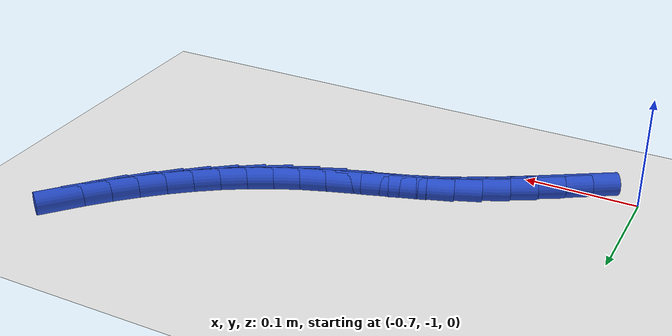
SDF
<sdf version="1.6">
 <world name="default">
  <model name="ground_plane">
   <static>1</static>
   <link name="link">
    <collision name="collision">
     <geometry><plane><normal>0 0 1</normal><size>100 100</size></plane></geometry>
     <surface><friction><ode><mu>100</mu><mu2>50</mu2></ode></friction></surface>
    </collision>
    <visual name="visual">
     <cast_shadows>0</cast_shadows>
     <geometry><plane><normal>0 0 1</normal><size>100 100</size></plane></geometry>
     <material>
      <script><uri>file://media/materials/scripts/gazebo.material</uri><name>Gazebo/WhiteGlow</name></script>
     </material>
    </visual>
   </link>
  </model>
  <model name="line">
   <link name="link_236">
    <pose>-0.6435267009509397 -0.9913873038698582 0.01 0 1.57 0.560354332982308</pose>
    <collision name="collision">
     <geometry><cylinder><radius>0.01</radius><length>0.08</length></cylinder></geometry>
    </collision>
    <visual name="visual">
     <material>
      <script><name>Gazebo/Blue</name><uri>file://media/materials/scripts/gazebo.material</uri></script>
     </material>
     <geometry><cylinder><radius>0.01</radius><length>0.08</length></cylinder></geometry>
    </visual>
   </link>
   <link name="link_237">
    <pose>-0.6234252648021739 -0.9787747933649472 0.01 0 1.57 0.5516567698110394</pose>
    <collision name="collision">
     <geometry><cylinder><radius>0.01</radius><length>0.08</length></cylinder></geometry>
    </collision>
    <visual name="visual">
     <material>
      <script><name>Gazebo/Blue</name><uri>file://media/materials/scripts/gazebo.material</uri></script>
     </material>
     <geometry><cylinder><radius>0.01</radius><length>0.08</length></cylinder></geometry>
    </visual>
   </link>
   <link name="link_238">
    <pose>-0.6031911481786946 -0.9663229794295489 0.01 0 1.57 0.5280816869629761</pose>
    <collision name="collision">
     <geometry><cylinder><radius>0.01</radius><length>0.08</length></cylinder></geometry>
    </collision>
    <visual name="visual">
     <material>
      <script><name>Gazebo/Blue</name><uri>file://media/materials/scripts/gazebo.material</uri></script>
     </material>
     <geometry><cylinder><radius>0.01</radius><length>0.08</length></cylinder></geometry>
    </visual>
   </link>
   <link name="link_239">
    <pose>-0.5827115590456124 -0.9543763537486109 0.01 0 1.57 0.4893377987275829</pose>
    <collision name="collision">
     <geometry><cylinder><radius>0.01</radius><length>0.08</length></cylinder></geometry>
    </collision>
    <visual name="visual">
     <material>
      <script><name>Gazebo/Blue</name><uri>file://media/materials/scripts/gazebo.material</uri></script>
     </material>
     <geometry><cylinder><radius>0.01</radius><length>0.08</length></cylinder></geometry>
    </visual>
   </link>
   <link name="link_240">
    <pose>-0.5618737053680376 -0.9432794080070803 0.01 0 1.57 0.4350312116175732</pose>
    <collision name="collision">
     <geometry><cylinder><radius>0.01</radius><length>0.08</length></cylinder></geometry>
    </collision>
    <visual name="visual">
     <material>
      <script><name>Gazebo/Blue</name><uri>file://media/materials/scripts/gazebo.material</uri></script>
     </material>
     <geometry><cylinder><radius>0.01</radius><length>0.08</length></cylinder></geometry>
    </visual>
   </link>
   <link name="link_241">
    <pose>-0.5405647953348198 -0.9333766332904466 0.01 0 1.57 0.37221075639807266</pose>
    <collision name="collision">
     <geometry><cylinder><radius>0.01</radius><length>0.08</length></cylinder></geometry>
    </collision>
    <visual name="visual">
     <material>
      <script><name>Gazebo/Blue</name><uri>file://media/materials/scripts/gazebo.material</uri></script>
     </material>
     <geometry><cylinder><radius>0.01</radius><length>0.08</length></cylinder></geometry>
    </visual>
   </link>
   <link name="link_242">
    <pose>-0.5187316558593887 -0.9248527859897239 0.01 0 1.57 0.3288415033547963</pose>
    <collision name="collision">
     <geometry><cylinder><radius>0.01</radius><length>0.08</length></cylinder></geometry>
    </collision>
    <visual name="visual">
     <material>
      <script><name>Gazebo/Blue</name><uri>file://media/materials/scripts/gazebo.material</uri></script>
     </material>
     <geometry><cylinder><radius>0.01</radius><length>0.08</length></cylinder></geometry>
    </visual>
   </link>
   <link name="link_243">
    <pose>-0.4965485619706308 -0.9172832274528813 0.01 0 1.57 0.3116439595789328</pose>
    <collision name="collision">
     <geometry><cylinder><radius>0.01</radius><length>0.08</length></cylinder></geometry>
    </collision>
    <visual name="visual">
     <material>
      <script><name>Gazebo/Blue</name><uri>file://media/materials/scripts/gazebo.material</uri></script>
     </material>
     <geometry><cylinder><radius>0.01</radius><length>0.08</length></cylinder></geometry>
    </visual>
   </link>
   <link name="link_244">
    <pose>-0.4742440203651094 -0.9100980177164573 0.01 0 1.57 0.3206002548735772</pose>
    <collision name="collision">
     <geometry><cylinder><radius>0.01</radius><length>0.08</length></cylinder></geometry>
    </collision>
    <visual name="visual">
     <material>
      <script><name>Gazebo/Blue</name><uri>file://media/materials/scripts/gazebo.material</uri></script>
     </material>
     <geometry><cylinder><radius>0.01</radius><length>0.08</length></cylinder></geometry>
    </visual>
   </link>
   <link name="link_245">
    <pose>-0.45204653773938813 -0.9027272168169894 0.01 0 1.57 0.3558847338889295</pose>
    <collision name="collision">
     <geometry><cylinder><radius>0.01</radius><length>0.08</length></cylinder></geometry>
    </collision>
    <visual name="visual">
     <material>
      <script><name>Gazebo/Blue</name><uri>file://media/materials/scripts/gazebo.material</uri></script>
     </material>
     <geometry><cylinder><radius>0.01</radius><length>0.08</length></cylinder></geometry>
    </visual>
   </link>
   <link name="link_246">
    <pose>-0.4301846207900308 -0.8946008847910162 0.01 0 1.57 0.41639098079147097</pose>
    <collision name="collision">
     <geometry><cylinder><radius>0.01</radius><length>0.08</length></cylinder></geometry>
    </collision>
    <visual name="visual">
     <material>
      <script><name>Gazebo/Blue</name><uri>file://media/materials/scripts/gazebo.material</uri></script>
     </material>
     <geometry><cylinder><radius>0.01</radius><length>0.08</length></cylinder></geometry>
    </visual>
   </link>
   <link name="link_247">
    <pose>-0.40887773422939544 -0.8851778984913087 0.01 0 1.57 0.4850293351724226</pose>
    <collision name="collision">
     <geometry><cylinder><radius>0.01</radius><length>0.08</length></cylinder></geometry>
    </collision>
    <visual name="visual">
     <material>
      <script><name>Gazebo/Blue</name><uri>file://media/materials/scripts/gazebo.material</uri></script>
     </material>
     <geometry><cylinder><radius>0.01</radius><length>0.08</length></cylinder></geometry>
    </visual>
   </link>
   <link name="link_248">
    <pose>-0.38822693209038717 -0.8742945097706643 0.01 0 1.57 0.5497953882217654</pose>
    <collision name="collision">
     <geometry><cylinder><radius>0.01</radius><length>0.08</length></cylinder></geometry>
    </collision>
    <visual name="visual">
     <material>
      <script><name>Gazebo/Blue</name><uri>file://media/materials/scripts/gazebo.material</uri></script>
     </material>
     <geometry><cylinder><radius>0.01</radius><length>0.08</length></cylinder></geometry>
    </visual>
   </link>
   <link name="link_249">
    <pose>-0.3682500460935769 -0.8620522001069737 0.01 0 1.57 0.6104973953502563</pose>
    <collision name="collision">
     <geometry><cylinder><radius>0.01</radius><length>0.08</length></cylinder></geometry>
    </collision>
    <visual name="visual">
     <material>
      <script><name>Gazebo/Blue</name><uri>file://media/materials/scripts/gazebo.material</uri></script>
     </material>
     <geometry><cylinder><radius>0.01</radius><length>0.08</length></cylinder></geometry>
    </visual>
   </link>
   <link name="link_250">
    <pose>-0.348963179153491 -0.848557960685404 0.01 0 1.57 0.6672995989669072</pose>
    <collision name="collision">
     <geometry><cylinder><radius>0.01</radius><length>0.08</length></cylinder></geometry>
    </collision>
    <visual name="visual">
     <material>
      <script><name>Gazebo/Blue</name><uri>file://media/materials/scripts/gazebo.material</uri></script>
     </material>
     <geometry><cylinder><radius>0.01</radius><length>0.08</length></cylinder></geometry>
    </visual>
   </link>
   <link name="link_251">
    <pose>-0.3303824341846545 -0.8339187826911222 0.01 0 1.57 0.7204426249471751</pose>
    <collision name="collision">
     <geometry><cylinder><radius>0.01</radius><length>0.08</length></cylinder></geometry>
    </collision>
    <visual name="visual">
     <material>
      <script><name>Gazebo/Blue</name><uri>file://media/materials/scripts/gazebo.material</uri></script>
     </material>
     <geometry><cylinder><radius>0.01</radius><length>0.08</length></cylinder></geometry>
    </visual>
   </link>
   <link name="link_252">
    <pose>-0.3125239141015926 -0.818241657309295 0.01 0 1.57 0.7702159055494151</pose>
    <collision name="collision">
     <geometry><cylinder><radius>0.01</radius><length>0.08</length></cylinder></geometry>
    </collision>
    <visual name="visual">
     <material>
      <script><name>Gazebo/Blue</name><uri>file://media/materials/scripts/gazebo.material</uri></script>
     </material>
     <geometry><cylinder><radius>0.01</radius><length>0.08</length></cylinder></geometry>
    </visual>
   </link>
   <link name="link_253">
    <pose>-0.29540372181883057 -0.8016335757250898 0.01 0 1.57 0.8169366427202205</pose>
    <collision name="collision">
     <geometry><cylinder><radius>0.01</radius><length>0.08</length></cylinder></geometry>
    </collision>
    <visual name="visual">
     <material>
      <script><name>Gazebo/Blue</name><uri>file://media/materials/scripts/gazebo.material</uri></script>
     </material>
     <geometry><cylinder><radius>0.01</radius><length>0.08</length></cylinder></geometry>
    </visual>
   </link>
   <link name="link_254">
    <pose>-0.27903796025089367 -0.7842015291236734 0.01 0 1.57 0.8609349916155006</pose>
    <collision name="collision">
     <geometry><cylinder><radius>0.01</radius><length>0.08</length></cylinder></geometry>
    </collision>
    <visual name="visual">
     <material>
      <script><name>Gazebo/Blue</name><uri>file://media/materials/scripts/gazebo.material</uri></script>
     </material>
     <geometry><cylinder><radius>0.01</radius><length>0.08</length></cylinder></geometry>
    </visual>
   </link>
  </model>
 </world>
</sdf>
